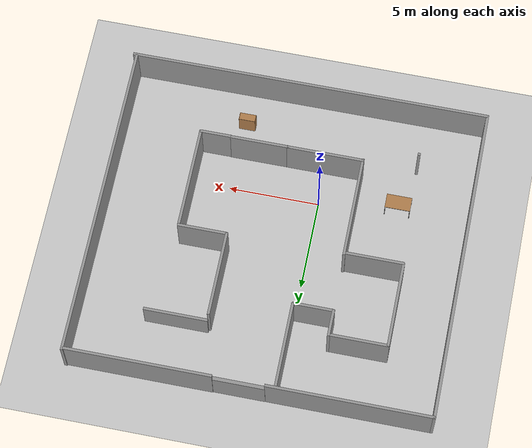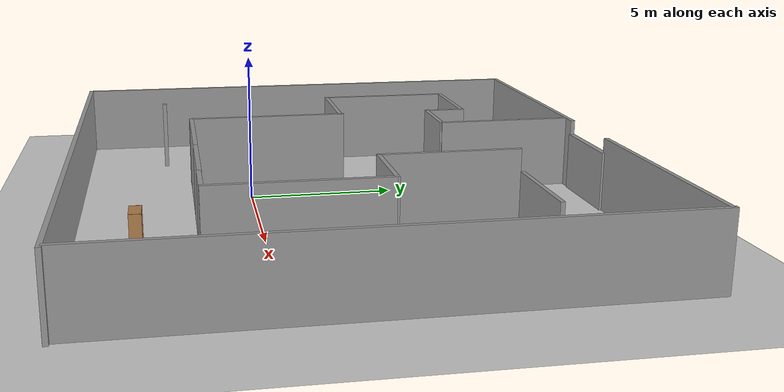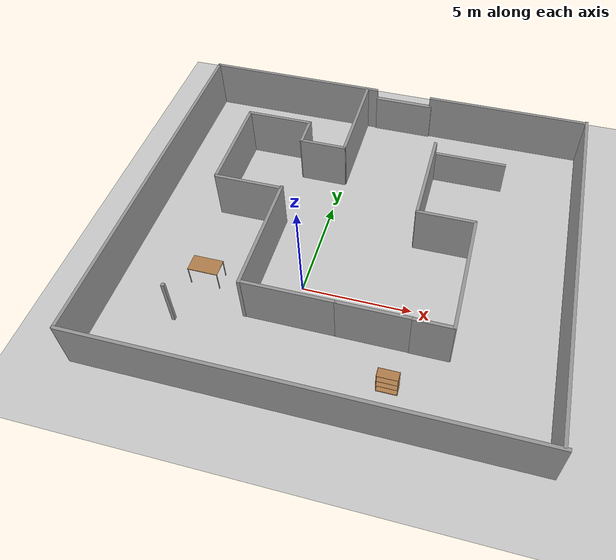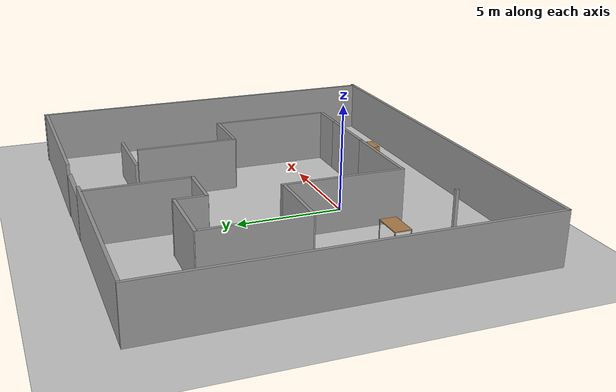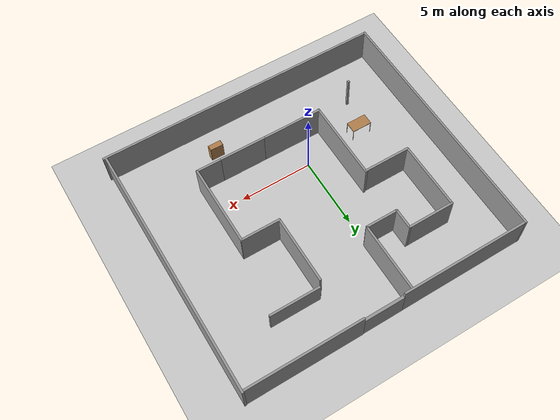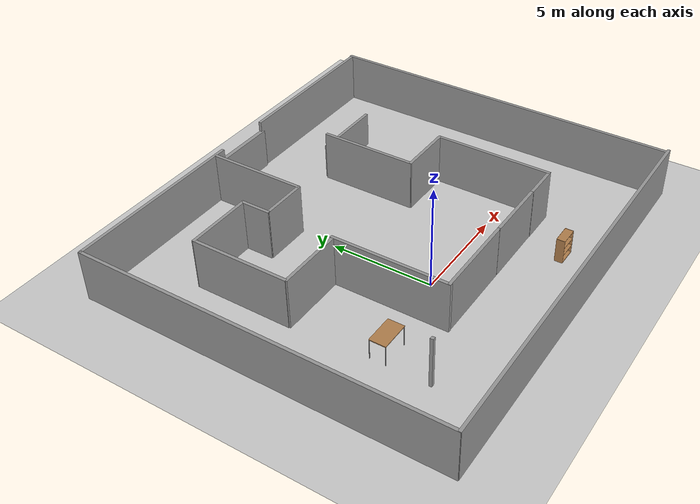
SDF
<sdf version="1.7">
 <world name="default">
  <light name="sun" type="directional">
   <pose>0 0 10 0 -0 0</pose>
   <diffuse>0.8 0.8 0.8 1</diffuse>
   <specular>0.1 0.1 0.1 1</specular>
   <attenuation>
    <range>1000</range>
    <constant>0.9</constant>
    <linear>0.01</linear>
    <quadratic>0.001</quadratic>
   </attenuation>
   <direction>-0.5 0.5 -1</direction>
   <spot><inner_angle>0</inner_angle><outer_angle>0</outer_angle><falloff>0</falloff></spot>
  </light>
  <model name="ground_plane">
   <static>1</static>
   <link name="link">
    <collision name="collision">
     <geometry><plane><normal>0 0 1</normal><size>100 100</size></plane></geometry>
     <surface><friction><ode><mu>100</mu><mu2>50</mu2></ode></friction></surface>
    </collision>
    <visual name="visual">
     <cast_shadows>0</cast_shadows>
     <geometry><plane><normal>0 0 1</normal><size>100 100</size></plane></geometry>
     <material>
      <script><uri>file://media/materials/scripts/gazebo.material</uri><name>Gazebo/Grey</name></script>
     </material>
    </visual>
   </link>
  </model>
  <gravity>0 0 -9.8</gravity>
  <magnetic_field>6e-06 2.3e-05 -4.2e-05</magnetic_field>
  <atmosphere type="adiabatic"/>
  <physics name="default_physics" default="0" type="ode">
   <max_step_size>0.001</max_step_size>
   <real_time_factor>1</real_time_factor>
   <real_time_update_rate>1000</real_time_update_rate>
  </physics>
  <scene><ambient>0.4 0.4 0.4 1</ambient><background>0.7 0.7 0.7 1</background><shadows>1</shadows></scene>
  <spherical_coordinates>
   <surface_model>EARTH_WGS84</surface_model>
   <latitude_deg>0</latitude_deg>
   <longitude_deg>0</longitude_deg>
   <elevation>0</elevation>
   <heading_deg>0</heading_deg>
  </spherical_coordinates>
  <model name="bookshelf">
   <static>1</static>
   <link name="link">
    <inertial><mass>1</mass></inertial>
    <collision name="back">
     <pose>0 0.005 0.6 0 -0 0</pose>
     <geometry><box><size>0.9 0.01 1.2</size></box></geometry>
    </collision>
    <visual name="visual1">
     <pose>0 0.005 0.6 0 -0 0</pose>
     <geometry><box><size>0.9 0.01 1.2</size></box></geometry>
     <material>
      <script><uri>file://media/materials/scripts/gazebo.material</uri><name>Gazebo/Wood</name></script>
     </material>
    </visual>
    <collision name="left_side">
     <pose>0.45 -0.195 0.6 0 -0 0</pose>
     <geometry><box><size>0.02 0.4 1.2</size></box></geometry>
    </collision>
    <visual name="visual2">
     <pose>0.45 -0.195 0.6 0 -0 0</pose>
     <geometry><box><size>0.02 0.4 1.2</size></box></geometry>
     <material>
      <script><uri>file://media/materials/scripts/gazebo.material</uri><name>Gazebo/Wood</name></script>
     </material>
    </visual>
    <collision name="right_side">
     <pose>-0.45 -0.195 0.6 0 -0 0</pose>
     <geometry><box><size>0.02 0.4 1.2</size></box></geometry>
    </collision>
    <visual name="visual3">
     <pose>-0.45 -0.195 0.6 0 -0 0</pose>
     <geometry><box><size>0.02 0.4 1.2</size></box></geometry>
     <material>
      <script><uri>file://media/materials/scripts/gazebo.material</uri><name>Gazebo/Wood</name></script>
     </material>
    </visual>
    <collision name="bottom">
     <pose>0 -0.195 0.03 0 -0 0</pose>
     <geometry><box><size>0.88 0.4 0.06</size></box></geometry>
    </collision>
    <visual name="visual4">
     <pose>0 -0.195 0.03 0 -0 0</pose>
     <geometry><box><size>0.88 0.4 0.06</size></box></geometry>
     <material>
      <script><uri>file://media/materials/scripts/gazebo.material</uri><name>Gazebo/Wood</name></script>
     </material>
    </visual>
    <collision name="top">
     <pose>0 -0.195 1.19 0 -0 0</pose>
     <geometry><box><size>0.88 0.4 0.02</size></box></geometry>
    </collision>
    <visual name="visual5">
     <pose>0 -0.195 1.19 0 -0 0</pose>
     <geometry><box><size>0.88 0.4 0.02</size></box></geometry>
     <material>
      <script><uri>file://media/materials/scripts/gazebo.material</uri><name>Gazebo/Wood</name></script>
     </material>
    </visual>
    <collision name="low_shelf">
     <pose>0 -0.195 0.43 0 -0 0</pose>
     <geometry><box><size>0.88 0.4 0.02</size></box></geometry>
    </collision>
    <visual name="visual6">
     <pose>0 -0.195 0.43 0 -0 0</pose>
     <geometry><box><size>0.88 0.4 0.02</size></box></geometry>
     <material>
      <script><uri>file://media/materials/scripts/gazebo.material</uri><name>Gazebo/Wood</name></script>
     </material>
    </visual>
    <collision name="high_shelf">
     <pose>0 -0.195 0.8 0 -0 0</pose>
     <geometry><box><size>0.88 0.4 0.02</size></box></geometry>
    </collision>
    <visual name="visual7">
     <pose>0 -0.195 0.8 0 -0 0</pose>
     <geometry><box><size>0.88 0.4 0.02</size></box></geometry>
     <material>
      <script><uri>file://media/materials/scripts/gazebo.material</uri><name>Gazebo/Wood</name></script>
     </material>
    </visual>
   </link>
   <pose>4.78412 -3.73836 0 0 -0 0</pose>
  </model>
  <model name="table">
   <static>0</static>
   <link name="link">
    <collision name="surface">
     <pose>0 0 1 0 -0 0</pose>
     <geometry><box><size>1.5 0.8 0.03</size></box></geometry>
     <surface><friction><ode><mu>0.6</mu><mu2>0.6</mu2></ode></friction></surface>
    </collision>
    <visual name="visual1">
     <pose>0 0 1 0 -0 0</pose>
     <geometry><box><size>1.4 0.8 0.04</size></box></geometry>
     <material>
      <script><uri>file://media/materials/scripts/gazebo.material</uri><name>Gazebo/Wood</name></script>
     </material>
    </visual>
    <collision name="front_left_leg">
     <pose>0.68 0.38 0.5 0 -0 0</pose>
     <geometry><cylinder><radius>0.02</radius><length>1</length></cylinder></geometry>
    </collision>
    <visual name="front_left_leg">
     <pose>0.68 0.38 0.5 0 -0 0</pose>
     <geometry><cylinder><radius>0.02</radius><length>1</length></cylinder></geometry>
     <material>
      <script><uri>file://media/materials/scripts/gazebo.material</uri><name>Gazebo/Grey</name></script>
     </material>
    </visual>
    <collision name="front_right_leg">
     <pose>0.68 -0.38 0.5 0 -0 0</pose>
     <geometry><cylinder><radius>0.02</radius><length>1</length></cylinder></geometry>
    </collision>
    <visual name="front_right_leg">
     <pose>0.68 -0.38 0.5 0 -0 0</pose>
     <geometry><cylinder><radius>0.02</radius><length>1</length></cylinder></geometry>
     <material>
      <script><uri>file://media/materials/scripts/gazebo.material</uri><name>Gazebo/Grey</name></script>
     </material>
    </visual>
    <collision name="back_right_leg">
     <pose>-0.68 -0.38 0.5 0 -0 0</pose>
     <geometry><cylinder><radius>0.02</radius><length>1</length></cylinder></geometry>
    </collision>
    <visual name="back_right_leg">
     <pose>-0.68 -0.38 0.5 0 -0 0</pose>
     <geometry><cylinder><radius>0.02</radius><length>1</length></cylinder></geometry>
     <material>
      <script><uri>file://media/materials/scripts/gazebo.material</uri><name>Gazebo/Grey</name></script>
     </material>
    </visual>
    <collision name="back_left_leg">
     <pose>-0.68 0.38 0.5 0 -0 0</pose>
     <geometry><cylinder><radius>0.02</radius><length>1</length></cylinder></geometry>
    </collision>
    <visual name="back_left_leg">
     <pose>-0.68 0.38 0.5 0 -0 0</pose>
     <geometry><cylinder><radius>0.02</radius><length>1</length></cylinder></geometry>
     <material>
      <script><uri>file://media/materials/scripts/gazebo.material</uri><name>Gazebo/Grey</name></script>
     </material>
    </visual>
    <inertial>
     <inertia><ixx>1</ixx><ixy>0</ixy><ixz>0</ixz><iyy>1</iyy><iyz>0</iyz><izz>1</izz></inertia>
     <mass>1</mass>
    </inertial>
   </link>
   <pose>-4.34248 -0.532954 -8e-06 0 -0 0</pose>
  </model>
  <model name="maze">
   <link name="Door_0">
    <pose>-1.86522 14.6791 0 0 -0 0</pose>
    <visual name="Door_0_Visual">
     <pose>0 0 1 0 -0 0</pose>
     <geometry><box><size>2.94 0.2 2</size></box></geometry>
     <material>
      <script><uri>file://media/materials/scripts/gazebo.material</uri><name>Gazebo/Grey</name></script>
      <shader type="pixel"/>
     </material>
    </visual>
    <collision name="Door_0_Collision">
     <pose>0 0 1 0 -0 0</pose>
     <geometry><box><size>2.94 0.2 2</size></box></geometry>
     <surface>
      <friction>
       <ode><mu>1</mu><mu2>1</mu2><fdir1>0 0 0</fdir1><slip1>0</slip1><slip2>0</slip2></ode>
       <torsional>
        <coefficient>1</coefficient>
        <patch_radius>0</patch_radius>
        <surface_radius>0</surface_radius>
        <use_patch_radius>1</use_patch_radius>
        <ode><slip>0</slip></ode>
       </torsional>
      </friction>
      <bounce><restitution_coefficient>0</restitution_coefficient><threshold>1e+06</threshold></bounce>
      <contact>
       <collide_without_contact>0</collide_without_contact>
       <collide_without_contact_bitmask>1</collide_without_contact_bitmask>
       <collide_bitmask>1</collide_bitmask>
       <ode>
        <soft_cfm>0</soft_cfm>
        <soft_erp>0.2</soft_erp>
        <kp>1e+13</kp>
        <kd>1</kd>
        <max_vel>0.01</max_vel>
        <min_depth>0</min_depth>
       </ode>
       <bullet>
        <split_impulse>1</split_impulse>
        <split_impulse_penetration_threshold>-0.01</split_impulse_penetration_threshold>
        <soft_cfm>0</soft_cfm>
        <soft_erp>0.2</soft_erp>
        <kp>1e+13</kp>
        <kd>1</kd>
       </bullet>
      </contact>
     </surface>
    </collision>
   </link>
   <link name="Wall_11">
    <pose>-3.86921 12.2905 0 0 0 -1.5708</pose>
    <inertial>
     <mass>1</mass>
     <inertia><ixx>1</ixx><ixy>0</ixy><ixz>0</ixz><iyy>1</iyy><iyz>0</iyz><izz>1</izz></inertia>
    </inertial>
    <visual name="Wall_11_Visual">
     <pose>0 0 1.25 0 -0 0</pose>
     <geometry><box><size>4.75 0.15 2.5</size></box></geometry>
     <material>
      <script><uri>file://media/materials/scripts/gazebo.material</uri><name>Gazebo/Grey</name></script>
      <ambient>1 1 1 1</ambient>
      <shader type="pixel"><normal_map>__default__</normal_map></shader>
     </material>
     <meta><layer>0</layer></meta>
    </visual>
    <collision name="Wall_11_Collision">
     <pose>0 0 1.25 0 -0 0</pose>
     <geometry><box><size>4.75 0.15 2.5</size></box></geometry>
     <surface>
      <friction>
       <ode><mu>1</mu><mu2>1</mu2><fdir1>0 0 0</fdir1><slip1>0</slip1><slip2>0</slip2></ode>
       <torsional>
        <coefficient>1</coefficient>
        <patch_radius>0</patch_radius>
        <surface_radius>0</surface_radius>
        <use_patch_radius>1</use_patch_radius>
        <ode><slip>0</slip></ode>
       </torsional>
      </friction>
      <bounce><restitution_coefficient>0</restitution_coefficient><threshold>1e+06</threshold></bounce>
      <contact>
       <collide_without_contact>0</collide_without_contact>
       <collide_without_contact_bitmask>1</collide_without_contact_bitmask>
       <collide_bitmask>1</collide_bitmask>
       <ode>
        <soft_cfm>0</soft_cfm>
        <soft_erp>0.2</soft_erp>
        <kp>1e+13</kp>
        <kd>1</kd>
        <max_vel>0.01</max_vel>
        <min_depth>0</min_depth>
       </ode>
       <bullet>
        <split_impulse>1</split_impulse>
        <split_impulse_penetration_threshold>-0.01</split_impulse_penetration_threshold>
        <soft_cfm>0</soft_cfm>
        <soft_erp>0.2</soft_erp>
        <kp>1e+13</kp>
        <kd>1</kd>
       </bullet>
      </contact>
     </surface>
    </collision>
   </link>
   <link name="Wall_12">
    <pose>-4.9499 9.9239 0 0 -0 3.14159</pose>
    <visual name="Wall_12_Visual">
     <pose>0 0 1.25 0 -0 0</pose>
     <geometry><box><size>2.25 0.15 2.5</size></box></geometry>
     <material>
      <script><uri>file://media/materials/scripts/gazebo.material</uri><name>Gazebo/Grey</name></script>
      <ambient>1 1 1 1</ambient>
      <shader type="pixel"/>
     </material>
     <meta><layer>0</layer></meta>
    </visual>
    <collision name="Wall_12_Collision">
     <pose>0 0 1.25 0 -0 0</pose>
     <geometry><box><size>2.25 0.15 2.5</size></box></geometry>
     <surface>
      <friction>
       <ode><mu>1</mu><mu2>1</mu2><fdir1>0 0 0</fdir1><slip1>0</slip1><slip2>0</slip2></ode>
       <torsional>
        <coefficient>1</coefficient>
        <patch_radius>0</patch_radius>
        <surface_radius>0</surface_radius>
        <use_patch_radius>1</use_patch_radius>
        <ode><slip>0</slip></ode>
       </torsional>
      </friction>
      <bounce><restitution_coefficient>0</restitution_coefficient><threshold>1e+06</threshold></bounce>
      <contact>
       <collide_without_contact>0</collide_without_contact>
       <collide_without_contact_bitmask>1</collide_without_contact_bitmask>
       <collide_bitmask>1</collide_bitmask>
       <ode>
        <soft_cfm>0</soft_cfm>
        <soft_erp>0.2</soft_erp>
        <kp>1e+13</kp>
        <kd>1</kd>
        <max_vel>0.01</max_vel>
        <min_depth>0</min_depth>
       </ode>
       <bullet>
        <split_impulse>1</split_impulse>
        <split_impulse_penetration_threshold>-0.01</split_impulse_penetration_threshold>
        <soft_cfm>0</soft_cfm>
        <soft_erp>0.2</soft_erp>
        <kp>1e+13</kp>
        <kd>1</kd>
       </bullet>
      </contact>
     </surface>
    </collision>
   </link>
   <link name="Wall_13">
    <pose>-6.05097 10.6177 0 0 -0 1.5708</pose>
    <visual name="Wall_13_Visual">
     <pose>0 0 1.25 0 -0 0</pose>
     <geometry><box><size>1.5 0.15 2.5</size></box></geometry>
     <material>
      <script><uri>file://media/materials/scripts/gazebo.material</uri><name>Gazebo/Grey</name></script>
      <ambient>1 1 1 1</ambient>
      <shader type="pixel"/>
     </material>
     <meta><layer>0</layer></meta>
    </visual>
    <collision name="Wall_13_Collision">
     <pose>0 0 1.25 0 -0 0</pose>
     <geometry><box><size>1.5 0.15 2.5</size></box></geometry>
     <surface>
      <friction>
       <ode><mu>1</mu><mu2>1</mu2><fdir1>0 0 0</fdir1><slip1>0</slip1><slip2>0</slip2></ode>
       <torsional>
        <coefficient>1</coefficient>
        <patch_radius>0</patch_radius>
        <surface_radius>0</surface_radius>
        <use_patch_radius>1</use_patch_radius>
        <ode><slip>0</slip></ode>
       </torsional>
      </friction>
      <bounce><restitution_coefficient>0</restitution_coefficient><threshold>1e+06</threshold></bounce>
      <contact>
       <collide_without_contact>0</collide_without_contact>
       <collide_without_contact_bitmask>1</collide_without_contact_bitmask>
       <collide_bitmask>1</collide_bitmask>
       <ode>
        <soft_cfm>0</soft_cfm>
        <soft_erp>0.2</soft_erp>
        <kp>1e+13</kp>
        <kd>1</kd>
        <max_vel>0.01</max_vel>
        <min_depth>0</min_depth>
       </ode>
       <bullet>
        <split_impulse>1</split_impulse>
        <split_impulse_penetration_threshold>-0.01</split_impulse_penetration_threshold>
        <soft_cfm>0</soft_cfm>
        <soft_erp>0.2</soft_erp>
        <kp>1e+13</kp>
        <kd>1</kd>
       </bullet>
      </contact>
     </surface>
    </collision>
   </link>
   <link name="Wall_14">
    <pose>-7.66581 11.2915 0 0 -0 3.14159</pose>
    <visual name="Wall_14_Visual">
     <pose>0 0 1.25 0 -0 0</pose>
     <geometry><box><size>3.25 0.15 2.5</size></box></geometry>
     <material>
      <script><uri>file://media/materials/scripts/gazebo.material</uri><name>Gazebo/Grey</name></script>
      <ambient>1 1 1 1</ambient>
      <shader type="pixel"/>
     </material>
     <meta><layer>0</layer></meta>
    </visual>
    <collision name="Wall_14_Collision">
     <pose>0 0 1.25 0 -0 0</pose>
     <geometry><box><size>3.25 0.15 2.5</size></box></geometry>
     <surface>
      <friction>
       <ode><mu>1</mu><mu2>1</mu2><fdir1>0 0 0</fdir1><slip1>0</slip1><slip2>0</slip2></ode>
       <torsional>
        <coefficient>1</coefficient>
        <patch_radius>0</patch_radius>
        <surface_radius>0</surface_radius>
        <use_patch_radius>1</use_patch_radius>
        <ode><slip>0</slip></ode>
       </torsional>
      </friction>
      <bounce><restitution_coefficient>0</restitution_coefficient><threshold>1e+06</threshold></bounce>
      <contact>
       <collide_without_contact>0</collide_without_contact>
       <collide_without_contact_bitmask>1</collide_without_contact_bitmask>
       <collide_bitmask>1</collide_bitmask>
       <ode>
        <soft_cfm>0</soft_cfm>
        <soft_erp>0.2</soft_erp>
        <kp>1e+13</kp>
        <kd>1</kd>
        <max_vel>0.01</max_vel>
        <min_depth>0</min_depth>
       </ode>
       <bullet>
        <split_impulse>1</split_impulse>
        <split_impulse_penetration_threshold>-0.01</split_impulse_penetration_threshold>
        <soft_cfm>0</soft_cfm>
        <soft_erp>0.2</soft_erp>
        <kp>1e+13</kp>
        <kd>1</kd>
       </bullet>
      </contact>
     </surface>
    </collision>
   </link>
   <link name="Wall_15">
    <pose>-9.22282 8.94485 0 0 0 -1.5708</pose>
    <visual name="Wall_15_Visual">
     <pose>0 0 1.25 0 -0 0</pose>
     <geometry><box><size>4.75 0.15 2.5</size></box></geometry>
     <material>
      <script><uri>file://media/materials/scripts/gazebo.material</uri><name>Gazebo/Grey</name></script>
      <ambient>1 1 1 1</ambient>
      <shader type="pixel"/>
     </material>
     <meta><layer>0</layer></meta>
    </visual>
    <collision name="Wall_15_Collision">
     <pose>0 0 1.25 0 -0 0</pose>
     <geometry><box><size>4.75 0.15 2.5</size></box></geometry>
     <surface>
      <friction>
       <ode><mu>1</mu><mu2>1</mu2><fdir1>0 0 0</fdir1><slip1>0</slip1><slip2>0</slip2></ode>
       <torsional>
        <coefficient>1</coefficient>
        <patch_radius>0</patch_radius>
        <surface_radius>0</surface_radius>
        <use_patch_radius>1</use_patch_radius>
        <ode><slip>0</slip></ode>
       </torsional>
      </friction>
      <bounce><restitution_coefficient>0</restitution_coefficient><threshold>1e+06</threshold></bounce>
      <contact>
       <collide_without_contact>0</collide_without_contact>
       <collide_without_contact_bitmask>1</collide_without_contact_bitmask>
       <collide_bitmask>1</collide_bitmask>
       <ode>
        <soft_cfm>0</soft_cfm>
        <soft_erp>0.2</soft_erp>
        <kp>1e+13</kp>
        <kd>1</kd>
        <max_vel>0.01</max_vel>
        <min_depth>0</min_depth>
       </ode>
       <bullet>
        <split_impulse>1</split_impulse>
        <split_impulse_penetration_threshold>-0.01</split_impulse_penetration_threshold>
        <soft_cfm>0</soft_cfm>
        <soft_erp>0.2</soft_erp>
        <kp>1e+13</kp>
        <kd>1</kd>
       </bullet>
      </contact>
     </surface>
    </collision>
   </link>
   <link name="Wall_16">
    <pose>-7.63864 6.56498 0 0 -0 0</pose>
    <visual name="Wall_16_Visual">
     <pose>0 0 1.25 0 -0 0</pose>
     <geometry><box><size>3.25 0.15 2.5</size></box></geometry>
     <material>
      <script><uri>file://media/materials/scripts/gazebo.material</uri><name>Gazebo/Grey</name></script>
      <ambient>1 1 1 1</ambient>
      <shader type="pixel"/>
     </material>
     <meta><layer>0</layer></meta>
    </visual>
    <collision name="Wall_16_Collision">
     <pose>0 0 1.25 0 -0 0</pose>
     <geometry><box><size>3.25 0.15 2.5</size></box></geometry>
     <surface>
      <friction>
       <ode><mu>1</mu><mu2>1</mu2><fdir1>0 0 0</fdir1><slip1>0</slip1><slip2>0</slip2></ode>
       <torsional>
        <coefficient>1</coefficient>
        <patch_radius>0</patch_radius>
        <surface_radius>0</surface_radius>
        <use_patch_radius>1</use_patch_radius>
        <ode><slip>0</slip></ode>
       </torsional>
      </friction>
      <bounce><restitution_coefficient>0</restitution_coefficient><threshold>1e+06</threshold></bounce>
      <contact>
       <collide_without_contact>0</collide_without_contact>
       <collide_without_contact_bitmask>1</collide_without_contact_bitmask>
       <collide_bitmask>1</collide_bitmask>
       <ode>
        <soft_cfm>0</soft_cfm>
        <soft_erp>0.2</soft_erp>
        <kp>1e+13</kp>
        <kd>1</kd>
        <max_vel>0.01</max_vel>
        <min_depth>0</min_depth>
       </ode>
       <bullet>
        <split_impulse>1</split_impulse>
        <split_impulse_penetration_threshold>-0.01</split_impulse_penetration_threshold>
        <soft_cfm>0</soft_cfm>
        <soft_erp>0.2</soft_erp>
        <kp>1e+13</kp>
        <kd>1</kd>
       </bullet>
      </contact>
     </surface>
    </collision>
   </link>
   <link name="Wall_17">
    <pose>-6.00419 3.81651 0 0 0 -1.5708</pose>
    <visual name="Wall_17_Visual">
     <pose>0 0 1.25 0 -0 0</pose>
     <geometry><box><size>5.75 0.15 2.5</size></box></geometry>
     <material>
      <script><uri>file://media/materials/scripts/gazebo.material</uri><name>Gazebo/Grey</name></script>
      <ambient>1 1 1 1</ambient>
      <shader type="pixel"/>
     </material>
     <meta><layer>0</layer></meta>
    </visual>
    <collision name="Wall_17_Collision">
     <pose>0 0 1.25 0 -0 0</pose>
     <geometry><box><size>5.75 0.15 2.5</size></box></geometry>
     <surface>
      <friction>
       <ode><mu>1</mu><mu2>1</mu2><fdir1>0 0 0</fdir1><slip1>0</slip1><slip2>0</slip2></ode>
       <torsional>
        <coefficient>1</coefficient>
        <patch_radius>0</patch_radius>
        <surface_radius>0</surface_radius>
        <use_patch_radius>1</use_patch_radius>
        <ode><slip>0</slip></ode>
       </torsional>
      </friction>
      <bounce><restitution_coefficient>0</restitution_coefficient><threshold>1e+06</threshold></bounce>
      <contact>
       <collide_without_contact>0</collide_without_contact>
       <collide_without_contact_bitmask>1</collide_without_contact_bitmask>
       <collide_bitmask>1</collide_bitmask>
       <ode>
        <soft_cfm>0</soft_cfm>
        <soft_erp>0.2</soft_erp>
        <kp>1e+13</kp>
        <kd>1</kd>
        <max_vel>0.01</max_vel>
        <min_depth>0</min_depth>
       </ode>
       <bullet>
        <split_impulse>1</split_impulse>
        <split_impulse_penetration_threshold>-0.01</split_impulse_penetration_threshold>
        <soft_cfm>0</soft_cfm>
        <soft_erp>0.2</soft_erp>
        <kp>1e+13</kp>
        <kd>1</kd>
       </bullet>
      </contact>
     </surface>
    </collision>
   </link>
   <link name="Wall_18">
    <pose>-3.93215 1.03192 0 0 -0 0</pose>
    <visual name="Wall_18_Visual">
     <pose>0 0 1.25 0 -0 0</pose>
     <geometry><box><size>4.25 0.15 2.5</size></box></geometry>
     <material>
      <script><uri>file://media/materials/scripts/gazebo.material</uri><name>Gazebo/Grey</name></script>
      <ambient>1 1 1 1</ambient>
      <shader type="pixel"/>
     </material>
     <meta><layer>0</layer></meta>
    </visual>
    <collision name="Wall_18_Collision">
     <pose>0 0 1.25 0 -0 0</pose>
     <geometry><box><size>4.25 0.15 2.5</size></box></geometry>
     <surface>
      <friction>
       <ode><mu>1</mu><mu2>1</mu2><fdir1>0 0 0</fdir1><slip1>0</slip1><slip2>0</slip2></ode>
       <torsional>
        <coefficient>1</coefficient>
        <patch_radius>0</patch_radius>
        <surface_radius>0</surface_radius>
        <use_patch_radius>1</use_patch_radius>
        <ode><slip>0</slip></ode>
       </torsional>
      </friction>
      <bounce><restitution_coefficient>0</restitution_coefficient><threshold>1e+06</threshold></bounce>
      <contact>
       <collide_without_contact>0</collide_without_contact>
       <collide_without_contact_bitmask>1</collide_without_contact_bitmask>
       <collide_bitmask>1</collide_bitmask>
       <ode>
        <soft_cfm>0</soft_cfm>
        <soft_erp>0.2</soft_erp>
        <kp>1e+13</kp>
        <kd>1</kd>
        <max_vel>0.01</max_vel>
        <min_depth>0</min_depth>
       </ode>
       <bullet>
        <split_impulse>1</split_impulse>
        <split_impulse_penetration_threshold>-0.01</split_impulse_penetration_threshold>
        <soft_cfm>0</soft_cfm>
        <soft_erp>0.2</soft_erp>
        <kp>1e+13</kp>
        <kd>1</kd>
       </bullet>
      </contact>
     </surface>
    </collision>
   </link>
   <link name="Wall_19">
    <pose>-8.95145 0.074708 0 0 -0 0</pose>
    <visual name="Wall_19_Visual">
     <pose>0 0 1.25 0 -0 0</pose>
     <geometry><box><size>0.15 0.15 2.5</size></box></geometry>
     <material>
      <script><uri>file://media/materials/scripts/gazebo.material</uri><name>Gazebo/Grey</name></script>
      <ambient>1 1 1 1</ambient>
      <shader type="pixel"/>
     </material>
     <meta><layer>0</layer></meta>
    </visual>
    <collision name="Wall_19_Collision">
     <pose>0 0 1.25 0 -0 0</pose>
     <geometry><box><size>0.15 0.15 2.5</size></box></geometry>
     <surface>
      <friction>
       <ode><mu>1</mu><mu2>1</mu2><fdir1>0 0 0</fdir1><slip1>0</slip1><slip2>0</slip2></ode>
       <torsional>
        <coefficient>1</coefficient>
        <patch_radius>0</patch_radius>
        <surface_radius>0</surface_radius>
        <use_patch_radius>1</use_patch_radius>
        <ode><slip>0</slip></ode>
       </torsional>
      </friction>
      <bounce><restitution_coefficient>0</restitution_coefficient><threshold>1e+06</threshold></bounce>
      <contact>
       <collide_without_contact>0</collide_without_contact>
       <collide_without_contact_bitmask>1</collide_without_contact_bitmask>
       <collide_bitmask>1</collide_bitmask>
       <ode>
        <soft_cfm>0</soft_cfm>
        <soft_erp>0.2</soft_erp>
        <kp>1e+13</kp>
        <kd>1</kd>
        <max_vel>0.01</max_vel>
        <min_depth>0</min_depth>
       </ode>
       <bullet>
        <split_impulse>1</split_impulse>
        <split_impulse_penetration_threshold>-0.01</split_impulse_penetration_threshold>
        <soft_cfm>0</soft_cfm>
        <soft_erp>0.2</soft_erp>
        <kp>1e+13</kp>
        <kd>1</kd>
       </bullet>
      </contact>
     </surface>
    </collision>
   </link>
   <link name="Wall_20">
    <pose>-0.27651 1.02762 0 0 -0 0</pose>
    <visual name="Wall_20_Visual">
     <pose>0 0 1.25 0 -0 0</pose>
     <geometry><box><size>3.25 0.15 2.5</size></box></geometry>
     <material>
      <script><uri>file://media/materials/scripts/gazebo.material</uri><name>Gazebo/Grey</name></script>
      <ambient>1 1 1 1</ambient>
      <shader type="pixel"/>
     </material>
     <meta><layer>0</layer></meta>
    </visual>
    <collision name="Wall_20_Collision">
     <pose>0 0 1.25 0 -0 0</pose>
     <geometry><box><size>3.25 0.15 2.5</size></box></geometry>
     <surface>
      <friction>
       <ode><mu>1</mu><mu2>1</mu2><fdir1>0 0 0</fdir1><slip1>0</slip1><slip2>0</slip2></ode>
       <torsional>
        <coefficient>1</coefficient>
        <patch_radius>0</patch_radius>
        <surface_radius>0</surface_radius>
        <use_patch_radius>1</use_patch_radius>
        <ode><slip>0</slip></ode>
       </torsional>
      </friction>
      <bounce><restitution_coefficient>0</restitution_coefficient><threshold>1e+06</threshold></bounce>
      <contact>
       <collide_without_contact>0</collide_without_contact>
       <collide_without_contact_bitmask>1</collide_without_contact_bitmask>
       <collide_bitmask>1</collide_bitmask>
       <ode>
        <soft_cfm>0</soft_cfm>
        <soft_erp>0.2</soft_erp>
        <kp>1e+13</kp>
        <kd>1</kd>
        <max_vel>0.01</max_vel>
        <min_depth>0</min_depth>
       </ode>
       <bullet>
        <split_impulse>1</split_impulse>
        <split_impulse_penetration_threshold>-0.01</split_impulse_penetration_threshold>
        <soft_cfm>0</soft_cfm>
        <soft_erp>0.2</soft_erp>
        <kp>1e+13</kp>
        <kd>1</kd>
       </bullet>
      </contact>
     </surface>
    </collision>
   </link>
   <link name="Wall_21">
    <pose>2.17682 1.01308 0 0 -0 0</pose>
    <visual name="Wall_21_Visual">
     <pose>0 0 1.25 0 -0 0</pose>
     <geometry><box><size>1.75 0.15 2.5</size></box></geometry>
     <material>
      <script><uri>file://media/materials/scripts/gazebo.material</uri><name>Gazebo/Grey</name></script>
      <ambient>1 1 1 1</ambient>
      <shader type="pixel"/>
     </material>
     <meta><layer>0</layer></meta>
    </visual>
    <collision name="Wall_21_Collision">
     <pose>0 0 1.25 0 -0 0</pose>
     <geometry><box><size>1.75 0.15 2.5</size></box></geometry>
     <surface>
      <friction>
       <ode><mu>1</mu><mu2>1</mu2><fdir1>0 0 0</fdir1><slip1>0</slip1><slip2>0</slip2></ode>
       <torsional>
        <coefficient>1</coefficient>
        <patch_radius>0</patch_radius>
        <surface_radius>0</surface_radius>
        <use_patch_radius>1</use_patch_radius>
        <ode><slip>0</slip></ode>
       </torsional>
      </friction>
      <bounce><restitution_coefficient>0</restitution_coefficient><threshold>1e+06</threshold></bounce>
      <contact>
       <collide_without_contact>0</collide_without_contact>
       <collide_without_contact_bitmask>1</collide_without_contact_bitmask>
       <collide_bitmask>1</collide_bitmask>
       <ode>
        <soft_cfm>0</soft_cfm>
        <soft_erp>0.2</soft_erp>
        <kp>1e+13</kp>
        <kd>1</kd>
        <max_vel>0.01</max_vel>
        <min_depth>0</min_depth>
       </ode>
       <bullet>
        <split_impulse>1</split_impulse>
        <split_impulse_penetration_threshold>-0.01</split_impulse_penetration_threshold>
        <soft_cfm>0</soft_cfm>
        <soft_erp>0.2</soft_erp>
        <kp>1e+13</kp>
        <kd>1</kd>
       </bullet>
      </contact>
     </surface>
    </collision>
   </link>
   <link name="Wall_22">
    <pose>3.01718 3.83161 0 0 -0 1.5708</pose>
    <visual name="Wall_22_Visual">
     <pose>0 0 1.25 0 -0 0</pose>
     <geometry><box><size>5.75 0.15 2.5</size></box></geometry>
     <material>
      <script><uri>file://media/materials/scripts/gazebo.material</uri><name>Gazebo/Grey</name></script>
      <ambient>1 1 1 1</ambient>
      <shader type="pixel"/>
     </material>
     <meta><layer>0</layer></meta>
    </visual>
    <collision name="Wall_22_Collision">
     <pose>0 0 1.25 0 -0 0</pose>
     <geometry><box><size>5.75 0.15 2.5</size></box></geometry>
     <surface>
      <friction>
       <ode><mu>1</mu><mu2>1</mu2><fdir1>0 0 0</fdir1><slip1>0</slip1><slip2>0</slip2></ode>
       <torsional>
        <coefficient>1</coefficient>
        <patch_radius>0</patch_radius>
        <surface_radius>0</surface_radius>
        <use_patch_radius>1</use_patch_radius>
        <ode><slip>0</slip></ode>
       </torsional>
      </friction>
      <bounce><restitution_coefficient>0</restitution_coefficient><threshold>1e+06</threshold></bounce>
      <contact>
       <collide_without_contact>0</collide_without_contact>
       <collide_without_contact_bitmask>1</collide_without_contact_bitmask>
       <collide_bitmask>1</collide_bitmask>
       <ode>
        <soft_cfm>0</soft_cfm>
        <soft_erp>0.2</soft_erp>
        <kp>1e+13</kp>
        <kd>1</kd>
        <max_vel>0.01</max_vel>
        <min_depth>0</min_depth>
       </ode>
       <bullet>
        <split_impulse>1</split_impulse>
        <split_impulse_penetration_threshold>-0.01</split_impulse_penetration_threshold>
        <soft_cfm>0</soft_cfm>
        <soft_erp>0.2</soft_erp>
        <kp>1e+13</kp>
        <kd>1</kd>
       </bullet>
      </contact>
     </surface>
    </collision>
   </link>
   <link name="Wall_23">
    <pose>1.70544 6.70508 0 0 -0 3.14159</pose>
    <visual name="Wall_23_Visual">
     <pose>0 0 1.25 0 -0 0</pose>
     <geometry><box><size>2.75 0.15 2.5</size></box></geometry>
     <material>
      <script><uri>file://media/materials/scripts/gazebo.material</uri><name>Gazebo/Grey</name></script>
      <ambient>1 1 1 1</ambient>
      <shader type="pixel"/>
     </material>
     <meta><layer>0</layer></meta>
    </visual>
    <collision name="Wall_23_Collision">
     <pose>0 0 1.25 0 -0 0</pose>
     <geometry><box><size>2.75 0.15 2.5</size></box></geometry>
     <surface>
      <friction>
       <ode><mu>1</mu><mu2>1</mu2><fdir1>0 0 0</fdir1><slip1>0</slip1><slip2>0</slip2></ode>
       <torsional>
        <coefficient>1</coefficient>
        <patch_radius>0</patch_radius>
        <surface_radius>0</surface_radius>
        <use_patch_radius>1</use_patch_radius>
        <ode><slip>0</slip></ode>
       </torsional>
      </friction>
      <bounce><restitution_coefficient>0</restitution_coefficient><threshold>1e+06</threshold></bounce>
      <contact>
       <collide_without_contact>0</collide_without_contact>
       <collide_without_contact_bitmask>1</collide_without_contact_bitmask>
       <collide_bitmask>1</collide_bitmask>
       <ode>
        <soft_cfm>0</soft_cfm>
        <soft_erp>0.2</soft_erp>
        <kp>1e+13</kp>
        <kd>1</kd>
        <max_vel>0.01</max_vel>
        <min_depth>0</min_depth>
       </ode>
       <bullet>
        <split_impulse>1</split_impulse>
        <split_impulse_penetration_threshold>-0.01</split_impulse_penetration_threshold>
        <soft_cfm>0</soft_cfm>
        <soft_erp>0.2</soft_erp>
        <kp>1e+13</kp>
        <kd>1</kd>
       </bullet>
      </contact>
     </surface>
    </collision>
   </link>
   <link name="Wall_24">
    <pose>0.378228 9.04316 0 0 -0 1.5708</pose>
    <visual name="Wall_24_Visual">
     <pose>0 0 1.25 0 -0 0</pose>
     <geometry><box><size>4.75 0.15 2.5</size></box></geometry>
     <material>
      <script><uri>file://media/materials/scripts/gazebo.material</uri><name>Gazebo/Grey</name></script>
      <ambient>1 1 1 1</ambient>
      <shader type="pixel"/>
     </material>
     <meta><layer>0</layer></meta>
    </visual>
    <collision name="Wall_24_Collision">
     <pose>0 0 1.25 0 -0 0</pose>
     <geometry><box><size>4.75 0.15 2.5</size></box></geometry>
     <surface>
      <friction>
       <ode><mu>1</mu><mu2>1</mu2><fdir1>0 0 0</fdir1><slip1>0</slip1><slip2>0</slip2></ode>
       <torsional>
        <coefficient>1</coefficient>
        <patch_radius>0</patch_radius>
        <surface_radius>0</surface_radius>
        <use_patch_radius>1</use_patch_radius>
        <ode><slip>0</slip></ode>
       </torsional>
      </friction>
      <bounce><restitution_coefficient>0</restitution_coefficient><threshold>1e+06</threshold></bounce>
      <contact>
       <collide_without_contact>0</collide_without_contact>
       <collide_without_contact_bitmask>1</collide_without_contact_bitmask>
       <collide_bitmask>1</collide_bitmask>
       <ode>
        <soft_cfm>0</soft_cfm>
        <soft_erp>0.2</soft_erp>
        <kp>1e+13</kp>
        <kd>1</kd>
        <max_vel>0.01</max_vel>
        <min_depth>0</min_depth>
       </ode>
       <bullet>
        <split_impulse>1</split_impulse>
        <split_impulse_penetration_threshold>-0.01</split_impulse_penetration_threshold>
        <soft_cfm>0</soft_cfm>
        <soft_erp>0.2</soft_erp>
        <kp>1e+13</kp>
        <kd>1</kd>
       </bullet>
      </contact>
     </surface>
    </collision>
   </link>
   <link name="Wall_25">
    <pose>2.17308 11.4813 -0.762608 0 -0 0</pose>
    <visual name="Wall_25_Visual">
     <pose>0 0 1.25 0 -0 0</pose>
     <geometry><box><size>3.5 0.15 2.5</size></box></geometry>
     <material>
      <script><uri>file://media/materials/scripts/gazebo.material</uri><name>Gazebo/Grey</name></script>
      <ambient>1 1 1 1</ambient>
      <shader type="pixel"/>
     </material>
     <meta><layer>0</layer></meta>
    </visual>
    <collision name="Wall_25_Collision">
     <pose>0 0 1.25 0 -0 0</pose>
     <geometry><box><size>3.5 0.15 2.5</size></box></geometry>
     <surface>
      <friction>
       <ode><mu>1</mu><mu2>1</mu2><fdir1>0 0 0</fdir1><slip1>0</slip1><slip2>0</slip2></ode>
       <torsional>
        <coefficient>1</coefficient>
        <patch_radius>0</patch_radius>
        <surface_radius>0</surface_radius>
        <use_patch_radius>1</use_patch_radius>
        <ode><slip>0</slip></ode>
       </torsional>
      </friction>
      <bounce><restitution_coefficient>0</restitution_coefficient><threshold>1e+06</threshold></bounce>
      <contact>
       <collide_without_contact>0</collide_without_contact>
       <collide_without_contact_bitmask>1</collide_without_contact_bitmask>
       <collide_bitmask>1</collide_bitmask>
       <ode>
        <soft_cfm>0</soft_cfm>
        <soft_erp>0.2</soft_erp>
        <kp>1e+13</kp>
        <kd>1</kd>
        <max_vel>0.01</max_vel>
        <min_depth>0</min_depth>
       </ode>
       <bullet>
        <split_impulse>1</split_impulse>
        <split_impulse_penetration_threshold>-0.01</split_impulse_penetration_threshold>
        <soft_cfm>0</soft_cfm>
        <soft_erp>0.2</soft_erp>
        <kp>1e+13</kp>
        <kd>1</kd>
       </bullet>
      </contact>
     </surface>
    </collision>
   </link>
   <link name="Wall_4">
    <pose>3.47877 14.7295 0 0 -0 0</pose>
    <visual name="Wall_4_Visual">
     <pose>0 0 1.25 0 -0 0</pose>
     <geometry><box><size>8 0.15 2.5</size></box></geometry>
     <material>
      <script><uri>file://media/materials/scripts/gazebo.material</uri><name>Gazebo/Grey</name></script>
      <ambient>1 1 1 1</ambient>
      <shader type="pixel"/>
     </material>
     <meta><layer>0</layer></meta>
    </visual>
    <collision name="Wall_4_Collision">
     <pose>0 0 1.25 0 -0 0</pose>
     <geometry><box><size>8 0.15 2.5</size></box></geometry>
     <surface>
      <friction>
       <ode><mu>1</mu><mu2>1</mu2><fdir1>0 0 0</fdir1><slip1>0</slip1><slip2>0</slip2></ode>
       <torsional>
        <coefficient>1</coefficient>
        <patch_radius>0</patch_radius>
        <surface_radius>0</surface_radius>
        <use_patch_radius>1</use_patch_radius>
        <ode><slip>0</slip></ode>
       </torsional>
      </friction>
      <bounce><restitution_coefficient>0</restitution_coefficient><threshold>1e+06</threshold></bounce>
      <contact>
       <collide_without_contact>0</collide_without_contact>
       <collide_without_contact_bitmask>1</collide_without_contact_bitmask>
       <collide_bitmask>1</collide_bitmask>
       <ode>
        <soft_cfm>0</soft_cfm>
        <soft_erp>0.2</soft_erp>
        <kp>1e+13</kp>
        <kd>1</kd>
        <max_vel>0.01</max_vel>
        <min_depth>0</min_depth>
       </ode>
       <bullet>
        <split_impulse>1</split_impulse>
        <split_impulse_penetration_threshold>-0.01</split_impulse_penetration_threshold>
        <soft_cfm>0</soft_cfm>
        <soft_erp>0.2</soft_erp>
        <kp>1e+13</kp>
        <kd>1</kd>
       </bullet>
      </contact>
     </surface>
    </collision>
   </link>
   <link name="Wall_5">
    <pose>7.49705 5.97466 0 0 0 -1.5708</pose>
    <visual name="Wall_5_Visual">
     <pose>0 0 1.25 0 -0 0</pose>
     <geometry><box><size>17.75 0.15 2.5</size></box></geometry>
     <material>
      <script><uri>file://media/materials/scripts/gazebo.material</uri><name>Gazebo/Grey</name></script>
      <ambient>1 1 1 1</ambient>
      <shader type="pixel"/>
     </material>
     <meta><layer>0</layer></meta>
    </visual>
    <collision name="Wall_5_Collision">
     <pose>0 0 1.25 0 -0 0</pose>
     <geometry><box><size>17.75 0.15 2.5</size></box></geometry>
     <surface>
      <friction>
       <ode><mu>1</mu><mu2>1</mu2><fdir1>0 0 0</fdir1><slip1>0</slip1><slip2>0</slip2></ode>
       <torsional>
        <coefficient>1</coefficient>
        <patch_radius>0</patch_radius>
        <surface_radius>0</surface_radius>
        <use_patch_radius>1</use_patch_radius>
        <ode><slip>0</slip></ode>
       </torsional>
      </friction>
      <bounce><restitution_coefficient>0</restitution_coefficient><threshold>1e+06</threshold></bounce>
      <contact>
       <collide_without_contact>0</collide_without_contact>
       <collide_without_contact_bitmask>1</collide_without_contact_bitmask>
       <collide_bitmask>1</collide_bitmask>
       <ode>
        <soft_cfm>0</soft_cfm>
        <soft_erp>0.2</soft_erp>
        <kp>1e+13</kp>
        <kd>1</kd>
        <max_vel>0.01</max_vel>
        <min_depth>0</min_depth>
       </ode>
       <bullet>
        <split_impulse>1</split_impulse>
        <split_impulse_penetration_threshold>-0.01</split_impulse_penetration_threshold>
        <soft_cfm>0</soft_cfm>
        <soft_erp>0.2</soft_erp>
        <kp>1e+13</kp>
        <kd>1</kd>
       </bullet>
      </contact>
     </surface>
    </collision>
   </link>
   <link name="Wall_6">
    <pose>-2.29785 -2.92261 0 0 -0 3.14159</pose>
    <visual name="Wall_6_Visual">
     <pose>0 0 1.25 0 -0 0</pose>
     <geometry><box><size>20 0.15 2.5</size></box></geometry>
     <material>
      <script><uri>file://media/materials/scripts/gazebo.material</uri><name>Gazebo/Grey</name></script>
      <ambient>1 1 1 1</ambient>
      <shader type="pixel"/>
     </material>
     <meta><layer>0</layer></meta>
    </visual>
    <collision name="Wall_6_Collision">
     <pose>0 0 1.25 0 -0 0</pose>
     <geometry><box><size>20 0.15 2.5</size></box></geometry>
     <surface>
      <friction>
       <ode><mu>1</mu><mu2>1</mu2><fdir1>0 0 0</fdir1><slip1>0</slip1><slip2>0</slip2></ode>
       <torsional>
        <coefficient>1</coefficient>
        <patch_radius>0</patch_radius>
        <surface_radius>0</surface_radius>
        <use_patch_radius>1</use_patch_radius>
        <ode><slip>0</slip></ode>
       </torsional>
      </friction>
      <bounce><restitution_coefficient>0</restitution_coefficient><threshold>1e+06</threshold></bounce>
      <contact>
       <collide_without_contact>0</collide_without_contact>
       <collide_without_contact_bitmask>1</collide_without_contact_bitmask>
       <collide_bitmask>1</collide_bitmask>
       <ode>
        <soft_cfm>0</soft_cfm>
        <soft_erp>0.2</soft_erp>
        <kp>1e+13</kp>
        <kd>1</kd>
        <max_vel>0.01</max_vel>
        <min_depth>0</min_depth>
       </ode>
       <bullet>
        <split_impulse>1</split_impulse>
        <split_impulse_penetration_threshold>-0.01</split_impulse_penetration_threshold>
        <soft_cfm>0</soft_cfm>
        <soft_erp>0.2</soft_erp>
        <kp>1e+13</kp>
        <kd>1</kd>
       </bullet>
      </contact>
     </surface>
    </collision>
   </link>
   <link name="Wall_7">
    <pose>-12.2539 5.8975 0 0 -0 1.5708</pose>
    <visual name="Wall_7_Visual">
     <pose>0 0 1.25 0 -0 0</pose>
     <geometry><box><size>17.75 0.15 2.5</size></box></geometry>
     <material>
      <script><uri>file://media/materials/scripts/gazebo.material</uri><name>Gazebo/Grey</name></script>
      <ambient>1 1 1 1</ambient>
      <shader type="pixel"/>
     </material>
     <meta><layer>0</layer></meta>
    </visual>
    <collision name="Wall_7_Collision">
     <pose>0 0 1.25 0 -0 0</pose>
     <geometry><box><size>17.75 0.15 2.5</size></box></geometry>
     <surface>
      <friction>
       <ode><mu>1</mu><mu2>1</mu2><fdir1>0 0 0</fdir1><slip1>0</slip1><slip2>0</slip2></ode>
       <torsional>
        <coefficient>1</coefficient>
        <patch_radius>0</patch_radius>
        <surface_radius>0</surface_radius>
        <use_patch_radius>1</use_patch_radius>
        <ode><slip>0</slip></ode>
       </torsional>
      </friction>
      <bounce><restitution_coefficient>0</restitution_coefficient><threshold>1e+06</threshold></bounce>
      <contact>
       <collide_without_contact>0</collide_without_contact>
       <collide_without_contact_bitmask>1</collide_without_contact_bitmask>
       <collide_bitmask>1</collide_bitmask>
       <ode>
        <soft_cfm>0</soft_cfm>
        <soft_erp>0.2</soft_erp>
        <kp>1e+13</kp>
        <kd>1</kd>
        <max_vel>0.01</max_vel>
        <min_depth>0</min_depth>
       </ode>
       <bullet>
        <split_impulse>1</split_impulse>
        <split_impulse_penetration_threshold>-0.01</split_impulse_penetration_threshold>
        <soft_cfm>0</soft_cfm>
        <soft_erp>0.2</soft_erp>
        <kp>1e+13</kp>
        <kd>1</kd>
       </bullet>
      </contact>
     </surface>
    </collision>
   </link>
   <link name="Wall_8">
    <pose>-7.81109 14.6953 0 0 -0 0</pose>
    <visual name="Wall_8_Visual">
     <pose>0 0 1.25 0 -0 0</pose>
     <geometry><box><size>9 0.15 2.5</size></box></geometry>
     <material>
      <script><uri>file://media/materials/scripts/gazebo.material</uri><name>Gazebo/Grey</name></script>
      <ambient>1 1 1 1</ambient>
      <shader type="pixel"/>
     </material>
     <meta><layer>0</layer></meta>
    </visual>
    <collision name="Wall_8_Collision">
     <pose>0 0 1.25 0 -0 0</pose>
     <geometry><box><size>9 0.15 2.5</size></box></geometry>
     <surface>
      <friction>
       <ode><mu>1</mu><mu2>1</mu2><fdir1>0 0 0</fdir1><slip1>0</slip1><slip2>0</slip2></ode>
       <torsional>
        <coefficient>1</coefficient>
        <patch_radius>0</patch_radius>
        <surface_radius>0</surface_radius>
        <use_patch_radius>1</use_patch_radius>
        <ode><slip>0</slip></ode>
       </torsional>
      </friction>
      <bounce><restitution_coefficient>0</restitution_coefficient><threshold>1e+06</threshold></bounce>
      <contact>
       <collide_without_contact>0</collide_without_contact>
       <collide_without_contact_bitmask>1</collide_without_contact_bitmask>
       <collide_bitmask>1</collide_bitmask>
       <ode>
        <soft_cfm>0</soft_cfm>
        <soft_erp>0.2</soft_erp>
        <kp>1e+13</kp>
        <kd>1</kd>
        <max_vel>0.01</max_vel>
        <min_depth>0</min_depth>
       </ode>
       <bullet>
        <split_impulse>1</split_impulse>
        <split_impulse_penetration_threshold>-0.01</split_impulse_penetration_threshold>
        <soft_cfm>0</soft_cfm>
        <soft_erp>0.2</soft_erp>
        <kp>1e+13</kp>
        <kd>1</kd>
       </bullet>
      </contact>
     </surface>
    </collision>
   </link>
   <static>1</static>
   <pose>3.96857 -3.00921 0 0 -0 0</pose>
  </model>
 </world>
</sdf>
